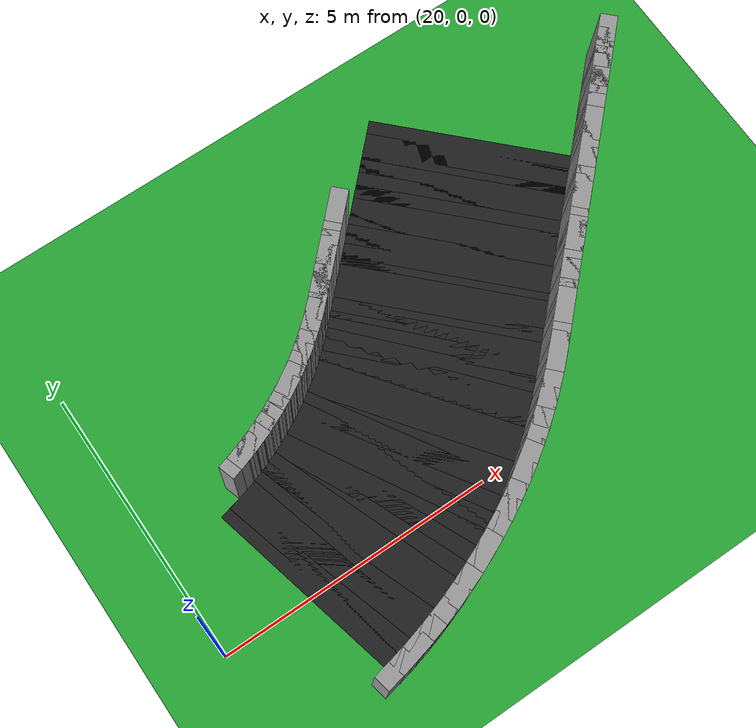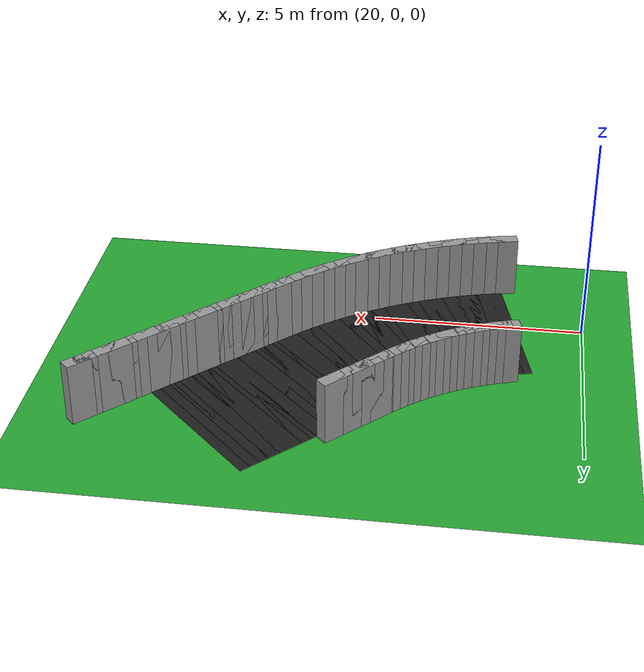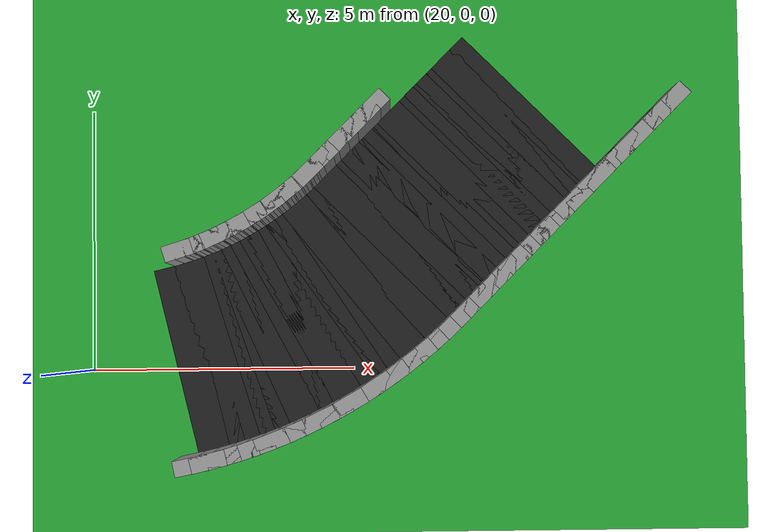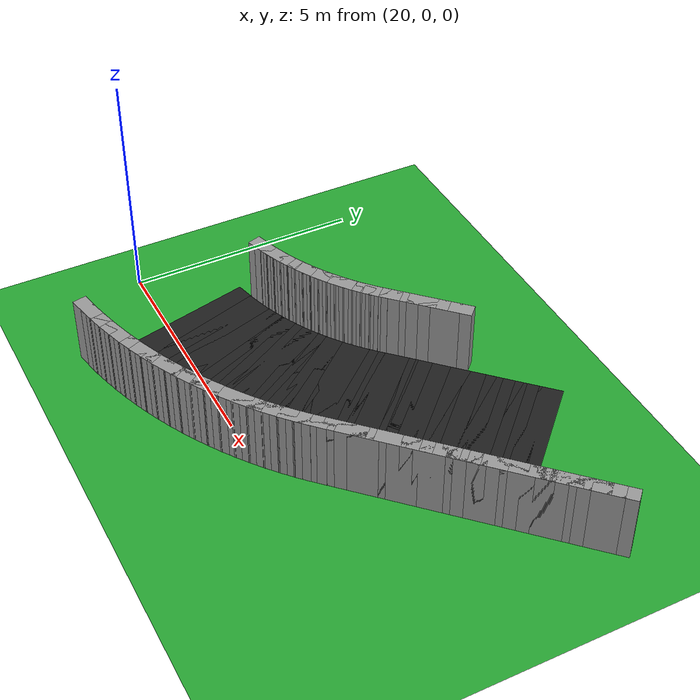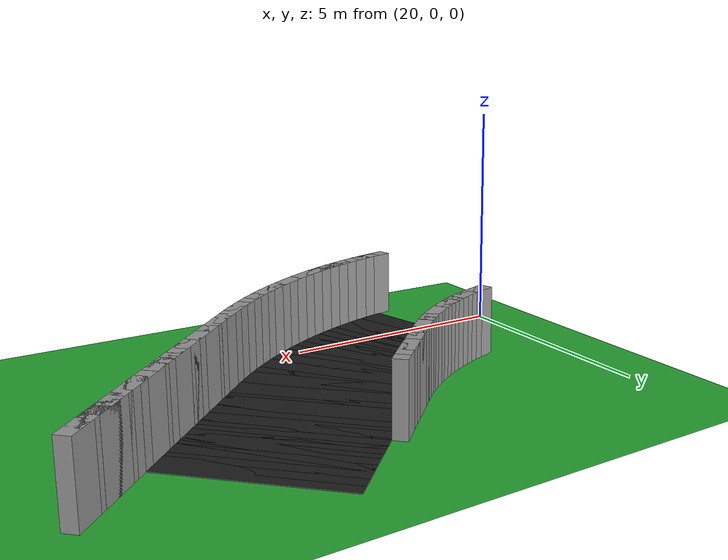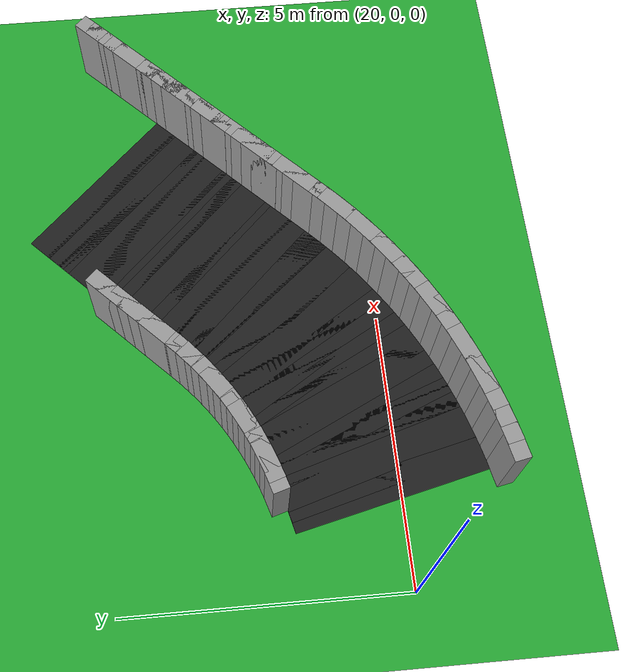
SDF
<sdf version="1.6">
 <world name="obstacle_tight">
  <include><uri>model://sun</uri></include>
  <model name="ground_plane">
   <static>true</static>
   <link name="link">
    <collision name="collision">
     <surface><friction><ode><mu>100</mu><mu2>50</mu2></ode></friction></surface>
     <geometry><plane><normal>0 0 1</normal><size>120 120</size></plane></geometry>
    </collision>
    <visual name="visual">
     <geometry><plane><normal>0 0 1</normal><size>120 120</size></plane></geometry>
     <material>
      <script><uri>file://media/materials/scripts/gazebo.material</uri><name>Gazebo/Green</name></script>
     </material>
    </visual>
   </link>
  </model>
  <model name="curbR_86">
   <static>true</static>
   <pose>22.018 -1.742 0.750 0 0 0.20420</pose>
   <link name="link">
    <collision name="collision"><geometry><box><size>0.673 0.300 1.500</size></box></geometry></collision>
    <visual name="visual">
     <geometry><box><size>0.673 0.300 1.500</size></box></geometry>
     <material>
      <script><uri>file://media/materials/scripts/gazebo.material</uri><name>Gazebo/Grey</name></script>
     </material>
    </visual>
   </link>
  </model>
  <model name="asphalt_87">
   <static>true</static>
   <pose>21.867 0.222 0.005 0 0 0.23562</pose>
   <link name="link">
    <visual name="visual">
     <geometry><box><size>0.611 3.600 0.010</size></box></geometry>
     <material>
      <script><uri>file://media/materials/scripts/gazebo.material</uri><name>Gazebo/Black</name></script>
     </material>
    </visual>
   </link>
  </model>
  <model name="curbR_87">
   <static>true</static>
   <pose>22.323 -1.674 0.750 0 0 0.23562</pose>
   <link name="link">
    <collision name="collision"><geometry><box><size>0.673 0.300 1.500</size></box></geometry></collision>
    <visual name="visual">
     <geometry><box><size>0.673 0.300 1.500</size></box></geometry>
     <material>
      <script><uri>file://media/materials/scripts/gazebo.material</uri><name>Gazebo/Grey</name></script>
     </material>
    </visual>
   </link>
  </model>
  <model name="asphalt_88">
   <static>true</static>
   <pose>22.111 0.285 0.005 0 0 0.26704</pose>
   <link name="link">
    <visual name="visual">
     <geometry><box><size>0.611 3.600 0.010</size></box></geometry>
     <material>
      <script><uri>file://media/materials/scripts/gazebo.material</uri><name>Gazebo/Black</name></script>
     </material>
    </visual>
   </link>
  </model>
  <model name="curbR_88">
   <static>true</static>
   <pose>22.625 -1.596 0.750 0 0 0.26704</pose>
   <link name="link">
    <collision name="collision"><geometry><box><size>0.673 0.300 1.500</size></box></geometry></collision>
    <visual name="visual">
     <geometry><box><size>0.673 0.300 1.500</size></box></geometry>
     <material>
      <script><uri>file://media/materials/scripts/gazebo.material</uri><name>Gazebo/Grey</name></script>
     </material>
    </visual>
   </link>
  </model>
  <model name="asphalt_89">
   <static>true</static>
   <pose>22.352 0.355 0.005 0 0 0.29845</pose>
   <link name="link">
    <visual name="visual">
     <geometry><box><size>0.611 3.600 0.010</size></box></geometry>
     <material>
      <script><uri>file://media/materials/scripts/gazebo.material</uri><name>Gazebo/Black</name></script>
     </material>
    </visual>
   </link>
  </model>
  <model name="curbL_89">
   <static>true</static>
   <pose>21.779 2.218 0.750 0 0 0.29845</pose>
   <link name="link">
    <collision name="collision"><geometry><box><size>0.550 0.300 1.500</size></box></geometry></collision>
    <visual name="visual">
     <geometry><box><size>0.550 0.300 1.500</size></box></geometry>
     <material>
      <script><uri>file://media/materials/scripts/gazebo.material</uri><name>Gazebo/Grey</name></script>
     </material>
    </visual>
   </link>
  </model>
  <model name="curbR_89">
   <static>true</static>
   <pose>22.925 -1.509 0.750 0 0 0.29845</pose>
   <link name="link">
    <collision name="collision"><geometry><box><size>0.673 0.300 1.500</size></box></geometry></collision>
    <visual name="visual">
     <geometry><box><size>0.673 0.300 1.500</size></box></geometry>
     <material>
      <script><uri>file://media/materials/scripts/gazebo.material</uri><name>Gazebo/Grey</name></script>
     </material>
    </visual>
   </link>
  </model>
  <model name="asphalt_90">
   <static>true</static>
   <pose>22.591 0.432 0.005 0 0 0.32987</pose>
   <link name="link">
    <visual name="visual">
     <geometry><box><size>0.611 3.600 0.010</size></box></geometry>
     <material>
      <script><uri>file://media/materials/scripts/gazebo.material</uri><name>Gazebo/Black</name></script>
     </material>
    </visual>
   </link>
  </model>
  <model name="curbL_90">
   <static>true</static>
   <pose>21.960 2.277 0.750 0 0 0.32987</pose>
   <link name="link">
    <collision name="collision"><geometry><box><size>0.550 0.300 1.500</size></box></geometry></collision>
    <visual name="visual">
     <geometry><box><size>0.550 0.300 1.500</size></box></geometry>
     <material>
      <script><uri>file://media/materials/scripts/gazebo.material</uri><name>Gazebo/Grey</name></script>
     </material>
    </visual>
   </link>
  </model>
  <model name="curbR_90">
   <static>true</static>
   <pose>23.223 -1.412 0.750 0 0 0.32987</pose>
   <link name="link">
    <collision name="collision"><geometry><box><size>0.673 0.300 1.500</size></box></geometry></collision>
    <visual name="visual">
     <geometry><box><size>0.673 0.300 1.500</size></box></geometry>
     <material>
      <script><uri>file://media/materials/scripts/gazebo.material</uri><name>Gazebo/Grey</name></script>
     </material>
    </visual>
   </link>
  </model>
  <model name="asphalt_91">
   <static>true</static>
   <pose>22.828 0.517 0.005 0 0 0.36128</pose>
   <link name="link">
    <visual name="visual">
     <geometry><box><size>0.611 3.600 0.010</size></box></geometry>
     <material>
      <script><uri>file://media/materials/scripts/gazebo.material</uri><name>Gazebo/Black</name></script>
     </material>
    </visual>
   </link>
  </model>
  <model name="curbL_91">
   <static>true</static>
   <pose>22.138 2.341 0.750 0 0 0.36128</pose>
   <link name="link">
    <collision name="collision"><geometry><box><size>0.550 0.300 1.500</size></box></geometry></collision>
    <visual name="visual">
     <geometry><box><size>0.550 0.300 1.500</size></box></geometry>
     <material>
      <script><uri>file://media/materials/scripts/gazebo.material</uri><name>Gazebo/Grey</name></script>
     </material>
    </visual>
   </link>
  </model>
  <model name="curbR_91">
   <static>true</static>
   <pose>23.517 -1.306 0.750 0 0 0.36128</pose>
   <link name="link">
    <collision name="collision"><geometry><box><size>0.673 0.300 1.500</size></box></geometry></collision>
    <visual name="visual">
     <geometry><box><size>0.673 0.300 1.500</size></box></geometry>
     <material>
      <script><uri>file://media/materials/scripts/gazebo.material</uri><name>Gazebo/Grey</name></script>
     </material>
    </visual>
   </link>
  </model>
  <model name="asphalt_92">
   <static>true</static>
   <pose>23.061 0.610 0.005 0 0 0.39270</pose>
   <link name="link">
    <visual name="visual">
     <geometry><box><size>0.611 3.600 0.010</size></box></geometry>
     <material>
      <script><uri>file://media/materials/scripts/gazebo.material</uri><name>Gazebo/Black</name></script>
     </material>
    </visual>
   </link>
  </model>
  <model name="curbL_92">
   <static>true</static>
   <pose>22.315 2.411 0.750 0 0 0.39270</pose>
   <link name="link">
    <collision name="collision"><geometry><box><size>0.550 0.300 1.500</size></box></geometry></collision>
    <visual name="visual">
     <geometry><box><size>0.550 0.300 1.500</size></box></geometry>
     <material>
      <script><uri>file://media/materials/scripts/gazebo.material</uri><name>Gazebo/Grey</name></script>
     </material>
    </visual>
   </link>
  </model>
  <model name="curbR_92">
   <static>true</static>
   <pose>23.807 -1.191 0.750 0 0 0.39270</pose>
   <link name="link">
    <collision name="collision"><geometry><box><size>0.673 0.300 1.500</size></box></geometry></collision>
    <visual name="visual">
     <geometry><box><size>0.673 0.300 1.500</size></box></geometry>
     <material>
      <script><uri>file://media/materials/scripts/gazebo.material</uri><name>Gazebo/Grey</name></script>
     </material>
    </visual>
   </link>
  </model>
  <model name="asphalt_93">
   <static>true</static>
   <pose>23.292 0.710 0.005 0 0 0.42412</pose>
   <link name="link">
    <visual name="visual">
     <geometry><box><size>0.611 3.600 0.010</size></box></geometry>
     <material>
      <script><uri>file://media/materials/scripts/gazebo.material</uri><name>Gazebo/Black</name></script>
     </material>
    </visual>
   </link>
  </model>
  <model name="curbL_93">
   <static>true</static>
   <pose>22.489 2.487 0.750 0 0 0.42412</pose>
   <link name="link">
    <collision name="collision"><geometry><box><size>0.550 0.300 1.500</size></box></geometry></collision>
    <visual name="visual">
     <geometry><box><size>0.550 0.300 1.500</size></box></geometry>
     <material>
      <script><uri>file://media/materials/scripts/gazebo.material</uri><name>Gazebo/Grey</name></script>
     </material>
    </visual>
   </link>
  </model>
  <model name="curbR_93">
   <static>true</static>
   <pose>24.094 -1.067 0.750 0 0 0.42412</pose>
   <link name="link">
    <collision name="collision"><geometry><box><size>0.673 0.300 1.500</size></box></geometry></collision>
    <visual name="visual">
     <geometry><box><size>0.673 0.300 1.500</size></box></geometry>
     <material>
      <script><uri>file://media/materials/scripts/gazebo.material</uri><name>Gazebo/Grey</name></script>
     </material>
    </visual>
   </link>
  </model>
  <model name="asphalt_94">
   <static>true</static>
   <pose>23.519 0.817 0.005 0 0 0.45553</pose>
   <link name="link">
    <visual name="visual">
     <geometry><box><size>0.611 3.600 0.010</size></box></geometry>
     <material>
      <script><uri>file://media/materials/scripts/gazebo.material</uri><name>Gazebo/Black</name></script>
     </material>
    </visual>
   </link>
  </model>
  <model name="curbL_94">
   <static>true</static>
   <pose>22.661 2.568 0.750 0 0 0.45553</pose>
   <link name="link">
    <collision name="collision"><geometry><box><size>0.550 0.300 1.500</size></box></geometry></collision>
    <visual name="visual">
     <geometry><box><size>0.550 0.300 1.500</size></box></geometry>
     <material>
      <script><uri>file://media/materials/scripts/gazebo.material</uri><name>Gazebo/Grey</name></script>
     </material>
    </visual>
   </link>
  </model>
  <model name="curbR_94">
   <static>true</static>
   <pose>24.377 -0.934 0.750 0 0 0.45553</pose>
   <link name="link">
    <collision name="collision"><geometry><box><size>0.673 0.300 1.500</size></box></geometry></collision>
    <visual name="visual">
     <geometry><box><size>0.673 0.300 1.500</size></box></geometry>
     <material>
      <script><uri>file://media/materials/scripts/gazebo.material</uri><name>Gazebo/Grey</name></script>
     </material>
    </visual>
   </link>
  </model>
  <model name="asphalt_95">
   <static>true</static>
   <pose>23.743 0.931 0.005 0 0 0.48695</pose>
   <link name="link">
    <visual name="visual">
     <geometry><box><size>0.611 3.600 0.010</size></box></geometry>
     <material>
      <script><uri>file://media/materials/scripts/gazebo.material</uri><name>Gazebo/Black</name></script>
     </material>
    </visual>
   </link>
  </model>
  <model name="curbL_95">
   <static>true</static>
   <pose>22.831 2.654 0.750 0 0 0.48695</pose>
   <link name="link">
    <collision name="collision"><geometry><box><size>0.550 0.300 1.500</size></box></geometry></collision>
    <visual name="visual">
     <geometry><box><size>0.550 0.300 1.500</size></box></geometry>
     <material>
      <script><uri>file://media/materials/scripts/gazebo.material</uri><name>Gazebo/Grey</name></script>
     </material>
    </visual>
   </link>
  </model>
  <model name="curbR_95">
   <static>true</static>
   <pose>24.655 -0.792 0.750 0 0 0.48695</pose>
   <link name="link">
    <collision name="collision"><geometry><box><size>0.673 0.300 1.500</size></box></geometry></collision>
    <visual name="visual">
     <geometry><box><size>0.673 0.300 1.500</size></box></geometry>
     <material>
      <script><uri>file://media/materials/scripts/gazebo.material</uri><name>Gazebo/Grey</name></script>
     </material>
    </visual>
   </link>
  </model>
  <model name="asphalt_96">
   <static>true</static>
   <pose>23.963 1.052 0.005 0 0 0.51836</pose>
   <link name="link">
    <visual name="visual">
     <geometry><box><size>0.611 3.600 0.010</size></box></geometry>
     <material>
      <script><uri>file://media/materials/scripts/gazebo.material</uri><name>Gazebo/Black</name></script>
     </material>
    </visual>
   </link>
  </model>
  <model name="curbL_96">
   <static>true</static>
   <pose>22.997 2.745 0.750 0 0 0.51836</pose>
   <link name="link">
    <collision name="collision"><geometry><box><size>0.550 0.300 1.500</size></box></geometry></collision>
    <visual name="visual">
     <geometry><box><size>0.550 0.300 1.500</size></box></geometry>
     <material>
      <script><uri>file://media/materials/scripts/gazebo.material</uri><name>Gazebo/Grey</name></script>
     </material>
    </visual>
   </link>
  </model>
  <model name="curbR_96">
   <static>true</static>
   <pose>24.929 -0.642 0.750 0 0 0.51836</pose>
   <link name="link">
    <collision name="collision"><geometry><box><size>0.673 0.300 1.500</size></box></geometry></collision>
    <visual name="visual">
     <geometry><box><size>0.673 0.300 1.500</size></box></geometry>
     <material>
      <script><uri>file://media/materials/scripts/gazebo.material</uri><name>Gazebo/Grey</name></script>
     </material>
    </visual>
   </link>
  </model>
  <model name="asphalt_97">
   <static>true</static>
   <pose>24.180 1.180 0.005 0 0 0.54978</pose>
   <link name="link">
    <visual name="visual">
     <geometry><box><size>0.611 3.600 0.010</size></box></geometry>
     <material>
      <script><uri>file://media/materials/scripts/gazebo.material</uri><name>Gazebo/Black</name></script>
     </material>
    </visual>
   </link>
  </model>
  <model name="curbL_97">
   <static>true</static>
   <pose>23.161 2.842 0.750 0 0 0.54978</pose>
   <link name="link">
    <collision name="collision"><geometry><box><size>0.550 0.300 1.500</size></box></geometry></collision>
    <visual name="visual">
     <geometry><box><size>0.550 0.300 1.500</size></box></geometry>
     <material>
      <script><uri>file://media/materials/scripts/gazebo.material</uri><name>Gazebo/Grey</name></script>
     </material>
    </visual>
   </link>
  </model>
  <model name="curbR_97">
   <static>true</static>
   <pose>25.198 -0.483 0.750 0 0 0.54978</pose>
   <link name="link">
    <collision name="collision"><geometry><box><size>0.673 0.300 1.500</size></box></geometry></collision>
    <visual name="visual">
     <geometry><box><size>0.673 0.300 1.500</size></box></geometry>
     <material>
      <script><uri>file://media/materials/scripts/gazebo.material</uri><name>Gazebo/Grey</name></script>
     </material>
    </visual>
   </link>
  </model>
  <model name="asphalt_98">
   <static>true</static>
   <pose>24.392 1.314 0.005 0 0 0.58119</pose>
   <link name="link">
    <visual name="visual">
     <geometry><box><size>0.611 3.600 0.010</size></box></geometry>
     <material>
      <script><uri>file://media/materials/scripts/gazebo.material</uri><name>Gazebo/Black</name></script>
     </material>
    </visual>
   </link>
  </model>
  <model name="curbL_98">
   <static>true</static>
   <pose>23.321 2.944 0.750 0 0 0.58119</pose>
   <link name="link">
    <collision name="collision"><geometry><box><size>0.550 0.300 1.500</size></box></geometry></collision>
    <visual name="visual">
     <geometry><box><size>0.550 0.300 1.500</size></box></geometry>
     <material>
      <script><uri>file://media/materials/scripts/gazebo.material</uri><name>Gazebo/Grey</name></script>
     </material>
    </visual>
   </link>
  </model>
  <model name="curbR_98">
   <static>true</static>
   <pose>25.462 -0.315 0.750 0 0 0.58119</pose>
   <link name="link">
    <collision name="collision"><geometry><box><size>0.673 0.300 1.500</size></box></geometry></collision>
    <visual name="visual">
     <geometry><box><size>0.673 0.300 1.500</size></box></geometry>
     <material>
      <script><uri>file://media/materials/scripts/gazebo.material</uri><name>Gazebo/Grey</name></script>
     </material>
    </visual>
   </link>
  </model>
  <model name="asphalt_99">
   <static>true</static>
   <pose>24.600 1.456 0.005 0 0 0.61261</pose>
   <link name="link">
    <visual name="visual">
     <geometry><box><size>0.611 3.600 0.010</size></box></geometry>
     <material>
      <script><uri>file://media/materials/scripts/gazebo.material</uri><name>Gazebo/Black</name></script>
     </material>
    </visual>
   </link>
  </model>
  <model name="curbL_99">
   <static>true</static>
   <pose>23.479 3.051 0.750 0 0 0.61261</pose>
   <link name="link">
    <collision name="collision"><geometry><box><size>0.550 0.300 1.500</size></box></geometry></collision>
    <visual name="visual">
     <geometry><box><size>0.550 0.300 1.500</size></box></geometry>
     <material>
      <script><uri>file://media/materials/scripts/gazebo.material</uri><name>Gazebo/Grey</name></script>
     </material>
    </visual>
   </link>
  </model>
  <model name="curbR_99">
   <static>true</static>
   <pose>25.721 -0.140 0.750 0 0 0.61261</pose>
   <link name="link">
    <collision name="collision"><geometry><box><size>0.673 0.300 1.500</size></box></geometry></collision>
    <visual name="visual">
     <geometry><box><size>0.673 0.300 1.500</size></box></geometry>
     <material>
      <script><uri>file://media/materials/scripts/gazebo.material</uri><name>Gazebo/Grey</name></script>
     </material>
    </visual>
   </link>
  </model>
  <model name="asphalt_100">
   <static>true</static>
   <pose>24.803 1.603 0.005 0 0 0.64403</pose>
   <link name="link">
    <visual name="visual">
     <geometry><box><size>0.611 3.600 0.010</size></box></geometry>
     <material>
      <script><uri>file://media/materials/scripts/gazebo.material</uri><name>Gazebo/Black</name></script>
     </material>
    </visual>
   </link>
  </model>
  <model name="curbL_100">
   <static>true</static>
   <pose>23.632 3.163 0.750 0 0 0.64403</pose>
   <link name="link">
    <collision name="collision"><geometry><box><size>0.550 0.300 1.500</size></box></geometry></collision>
    <visual name="visual">
     <geometry><box><size>0.550 0.300 1.500</size></box></geometry>
     <material>
      <script><uri>file://media/materials/scripts/gazebo.material</uri><name>Gazebo/Grey</name></script>
     </material>
    </visual>
   </link>
  </model>
  <model name="curbR_100">
   <static>true</static>
   <pose>25.974 0.044 0.750 0 0 0.64403</pose>
   <link name="link">
    <collision name="collision"><geometry><box><size>0.673 0.300 1.500</size></box></geometry></collision>
    <visual name="visual">
     <geometry><box><size>0.673 0.300 1.500</size></box></geometry>
     <material>
      <script><uri>file://media/materials/scripts/gazebo.material</uri><name>Gazebo/Grey</name></script>
     </material>
    </visual>
   </link>
  </model>
  <model name="asphalt_101">
   <static>true</static>
   <pose>25.002 1.757 0.005 0 0 0.67544</pose>
   <link name="link">
    <visual name="visual">
     <geometry><box><size>0.611 3.600 0.010</size></box></geometry>
     <material>
      <script><uri>file://media/materials/scripts/gazebo.material</uri><name>Gazebo/Black</name></script>
     </material>
    </visual>
   </link>
  </model>
  <model name="curbL_101">
   <static>true</static>
   <pose>23.782 3.279 0.750 0 0 0.67544</pose>
   <link name="link">
    <collision name="collision"><geometry><box><size>0.550 0.300 1.500</size></box></geometry></collision>
    <visual name="visual">
     <geometry><box><size>0.550 0.300 1.500</size></box></geometry>
     <material>
      <script><uri>file://media/materials/scripts/gazebo.material</uri><name>Gazebo/Grey</name></script>
     </material>
    </visual>
   </link>
  </model>
  <model name="curbR_101">
   <static>true</static>
   <pose>26.221 0.236 0.750 0 0 0.67544</pose>
   <link name="link">
    <collision name="collision"><geometry><box><size>0.673 0.300 1.500</size></box></geometry></collision>
    <visual name="visual">
     <geometry><box><size>0.673 0.300 1.500</size></box></geometry>
     <material>
      <script><uri>file://media/materials/scripts/gazebo.material</uri><name>Gazebo/Grey</name></script>
     </material>
    </visual>
   </link>
  </model>
  <model name="asphalt_102">
   <static>true</static>
   <pose>25.195 1.918 0.005 0 0 0.70686</pose>
   <link name="link">
    <visual name="visual">
     <geometry><box><size>0.611 3.600 0.010</size></box></geometry>
     <material>
      <script><uri>file://media/materials/scripts/gazebo.material</uri><name>Gazebo/Black</name></script>
     </material>
    </visual>
   </link>
  </model>
  <model name="curbL_102">
   <static>true</static>
   <pose>23.929 3.400 0.750 0 0 0.70686</pose>
   <link name="link">
    <collision name="collision"><geometry><box><size>0.550 0.300 1.500</size></box></geometry></collision>
    <visual name="visual">
     <geometry><box><size>0.550 0.300 1.500</size></box></geometry>
     <material>
      <script><uri>file://media/materials/scripts/gazebo.material</uri><name>Gazebo/Grey</name></script>
     </material>
    </visual>
   </link>
  </model>
  <model name="curbR_102">
   <static>true</static>
   <pose>26.461 0.435 0.750 0 0 0.70686</pose>
   <link name="link">
    <collision name="collision"><geometry><box><size>0.673 0.300 1.500</size></box></geometry></collision>
    <visual name="visual">
     <geometry><box><size>0.673 0.300 1.500</size></box></geometry>
     <material>
      <script><uri>file://media/materials/scripts/gazebo.material</uri><name>Gazebo/Grey</name></script>
     </material>
    </visual>
   </link>
  </model>
  <model name="asphalt_103">
   <static>true</static>
   <pose>25.384 2.084 0.005 0 0 0.73827</pose>
   <link name="link">
    <visual name="visual">
     <geometry><box><size>0.611 3.600 0.010</size></box></geometry>
     <material>
      <script><uri>file://media/materials/scripts/gazebo.material</uri><name>Gazebo/Black</name></script>
     </material>
    </visual>
   </link>
  </model>
  <model name="curbL_103">
   <static>true</static>
   <pose>24.071 3.526 0.750 0 0 0.73827</pose>
   <link name="link">
    <collision name="collision"><geometry><box><size>0.550 0.300 1.500</size></box></geometry></collision>
    <visual name="visual">
     <geometry><box><size>0.550 0.300 1.500</size></box></geometry>
     <material>
      <script><uri>file://media/materials/scripts/gazebo.material</uri><name>Gazebo/Grey</name></script>
     </material>
    </visual>
   </link>
  </model>
  <model name="curbR_103">
   <static>true</static>
   <pose>26.696 0.642 0.750 0 0 0.73827</pose>
   <link name="link">
    <collision name="collision"><geometry><box><size>0.673 0.300 1.500</size></box></geometry></collision>
    <visual name="visual">
     <geometry><box><size>0.673 0.300 1.500</size></box></geometry>
     <material>
      <script><uri>file://media/materials/scripts/gazebo.material</uri><name>Gazebo/Grey</name></script>
     </material>
    </visual>
   </link>
  </model>
  <model name="asphalt_104">
   <static>true</static>
   <pose>25.567 2.256 0.005 0 0 0.76969</pose>
   <link name="link">
    <visual name="visual">
     <geometry><box><size>0.611 3.600 0.010</size></box></geometry>
     <material>
      <script><uri>file://media/materials/scripts/gazebo.material</uri><name>Gazebo/Black</name></script>
     </material>
    </visual>
   </link>
  </model>
  <model name="curbL_104">
   <static>true</static>
   <pose>24.210 3.656 0.750 0 0 0.76969</pose>
   <link name="link">
    <collision name="collision"><geometry><box><size>0.550 0.300 1.500</size></box></geometry></collision>
    <visual name="visual">
     <geometry><box><size>0.550 0.300 1.500</size></box></geometry>
     <material>
      <script><uri>file://media/materials/scripts/gazebo.material</uri><name>Gazebo/Grey</name></script>
     </material>
    </visual>
   </link>
  </model>
  <model name="curbR_104">
   <static>true</static>
   <pose>26.924 0.856 0.750 0 0 0.76969</pose>
   <link name="link">
    <collision name="collision"><geometry><box><size>0.673 0.300 1.500</size></box></geometry></collision>
    <visual name="visual">
     <geometry><box><size>0.673 0.300 1.500</size></box></geometry>
     <material>
      <script><uri>file://media/materials/scripts/gazebo.material</uri><name>Gazebo/Grey</name></script>
     </material>
    </visual>
   </link>
  </model>
  <model name="asphalt_105">
   <static>true</static>
   <pose>25.745 2.432 0.005 0 0 0.78540</pose>
   <link name="link">
    <visual name="visual">
     <geometry><box><size>0.610 3.600 0.010</size></box></geometry>
     <material>
      <script><uri>file://media/materials/scripts/gazebo.material</uri><name>Gazebo/Black</name></script>
     </material>
    </visual>
   </link>
  </model>
  <model name="curbL_105">
   <static>true</static>
   <pose>24.367 3.810 0.750 0 0 0.78540</pose>
   <link name="link">
    <collision name="collision"><geometry><box><size>0.610 0.300 1.500</size></box></geometry></collision>
    <visual name="visual">
     <geometry><box><size>0.610 0.300 1.500</size></box></geometry>
     <material>
      <script><uri>file://media/materials/scripts/gazebo.material</uri><name>Gazebo/Grey</name></script>
     </material>
    </visual>
   </link>
  </model>
  <model name="curbR_105">
   <static>true</static>
   <pose>27.124 1.053 0.750 0 0 0.78540</pose>
   <link name="link">
    <collision name="collision"><geometry><box><size>0.610 0.300 1.500</size></box></geometry></collision>
    <visual name="visual">
     <geometry><box><size>0.610 0.300 1.500</size></box></geometry>
     <material>
      <script><uri>file://media/materials/scripts/gazebo.material</uri><name>Gazebo/Grey</name></script>
     </material>
    </visual>
   </link>
  </model>
  <model name="asphalt_106">
   <static>true</static>
   <pose>25.922 2.608 0.005 0 0 0.78540</pose>
   <link name="link">
    <visual name="visual">
     <geometry><box><size>0.610 3.600 0.010</size></box></geometry>
     <material>
      <script><uri>file://media/materials/scripts/gazebo.material</uri><name>Gazebo/Black</name></script>
     </material>
    </visual>
   </link>
  </model>
  <model name="curbL_106">
   <static>true</static>
   <pose>24.543 3.987 0.750 0 0 0.78540</pose>
   <link name="link">
    <collision name="collision"><geometry><box><size>0.610 0.300 1.500</size></box></geometry></collision>
    <visual name="visual">
     <geometry><box><size>0.610 0.300 1.500</size></box></geometry>
     <material>
      <script><uri>file://media/materials/scripts/gazebo.material</uri><name>Gazebo/Grey</name></script>
     </material>
    </visual>
   </link>
  </model>
  <model name="curbR_106">
   <static>true</static>
   <pose>27.301 1.230 0.750 0 0 0.78540</pose>
   <link name="link">
    <collision name="collision"><geometry><box><size>0.610 0.300 1.500</size></box></geometry></collision>
    <visual name="visual">
     <geometry><box><size>0.610 0.300 1.500</size></box></geometry>
     <material>
      <script><uri>file://media/materials/scripts/gazebo.material</uri><name>Gazebo/Grey</name></script>
     </material>
    </visual>
   </link>
  </model>
  <model name="asphalt_107">
   <static>true</static>
   <pose>26.099 2.785 0.005 0 0 0.78540</pose>
   <link name="link">
    <visual name="visual">
     <geometry><box><size>0.610 3.600 0.010</size></box></geometry>
     <material>
      <script><uri>file://media/materials/scripts/gazebo.material</uri><name>Gazebo/Black</name></script>
     </material>
    </visual>
   </link>
  </model>
  <model name="curbL_107">
   <static>true</static>
   <pose>24.720 4.164 0.750 0 0 0.78540</pose>
   <link name="link">
    <collision name="collision"><geometry><box><size>0.610 0.300 1.500</size></box></geometry></collision>
    <visual name="visual">
     <geometry><box><size>0.610 0.300 1.500</size></box></geometry>
     <material>
      <script><uri>file://media/materials/scripts/gazebo.material</uri><name>Gazebo/Grey</name></script>
     </material>
    </visual>
   </link>
  </model>
  <model name="curbR_107">
   <static>true</static>
   <pose>27.478 1.406 0.750 0 0 0.78540</pose>
   <link name="link">
    <collision name="collision"><geometry><box><size>0.610 0.300 1.500</size></box></geometry></collision>
    <visual name="visual">
     <geometry><box><size>0.610 0.300 1.500</size></box></geometry>
     <material>
      <script><uri>file://media/materials/scripts/gazebo.material</uri><name>Gazebo/Grey</name></script>
     </material>
    </visual>
   </link>
  </model>
  <model name="asphalt_108">
   <static>true</static>
   <pose>26.276 2.962 0.005 0 0 0.78540</pose>
   <link name="link">
    <visual name="visual">
     <geometry><box><size>0.610 3.600 0.010</size></box></geometry>
     <material>
      <script><uri>file://media/materials/scripts/gazebo.material</uri><name>Gazebo/Black</name></script>
     </material>
    </visual>
   </link>
  </model>
  <model name="curbL_108">
   <static>true</static>
   <pose>24.897 4.341 0.750 0 0 0.78540</pose>
   <link name="link">
    <collision name="collision"><geometry><box><size>0.610 0.300 1.500</size></box></geometry></collision>
    <visual name="visual">
     <geometry><box><size>0.610 0.300 1.500</size></box></geometry>
     <material>
      <script><uri>file://media/materials/scripts/gazebo.material</uri><name>Gazebo/Grey</name></script>
     </material>
    </visual>
   </link>
  </model>
  <model name="curbR_108">
   <static>true</static>
   <pose>27.655 1.583 0.750 0 0 0.78540</pose>
   <link name="link">
    <collision name="collision"><geometry><box><size>0.610 0.300 1.500</size></box></geometry></collision>
    <visual name="visual">
     <geometry><box><size>0.610 0.300 1.500</size></box></geometry>
     <material>
      <script><uri>file://media/materials/scripts/gazebo.material</uri><name>Gazebo/Grey</name></script>
     </material>
    </visual>
   </link>
  </model>
  <model name="asphalt_109">
   <static>true</static>
   <pose>26.453 3.139 0.005 0 0 0.78540</pose>
   <link name="link">
    <visual name="visual">
     <geometry><box><size>0.610 3.600 0.010</size></box></geometry>
     <material>
      <script><uri>file://media/materials/scripts/gazebo.material</uri><name>Gazebo/Black</name></script>
     </material>
    </visual>
   </link>
  </model>
  <model name="curbL_109">
   <static>true</static>
   <pose>25.074 4.518 0.750 0 0 0.78540</pose>
   <link name="link">
    <collision name="collision"><geometry><box><size>0.610 0.300 1.500</size></box></geometry></collision>
    <visual name="visual">
     <geometry><box><size>0.610 0.300 1.500</size></box></geometry>
     <material>
      <script><uri>file://media/materials/scripts/gazebo.material</uri><name>Gazebo/Grey</name></script>
     </material>
    </visual>
   </link>
  </model>
  <model name="curbR_109">
   <static>true</static>
   <pose>27.831 1.760 0.750 0 0 0.78540</pose>
   <link name="link">
    <collision name="collision"><geometry><box><size>0.610 0.300 1.500</size></box></geometry></collision>
    <visual name="visual">
     <geometry><box><size>0.610 0.300 1.500</size></box></geometry>
     <material>
      <script><uri>file://media/materials/scripts/gazebo.material</uri><name>Gazebo/Grey</name></script>
     </material>
    </visual>
   </link>
  </model>
  <model name="asphalt_110">
   <static>true</static>
   <pose>26.629 3.316 0.005 0 0 0.78540</pose>
   <link name="link">
    <visual name="visual">
     <geometry><box><size>0.610 3.600 0.010</size></box></geometry>
     <material>
      <script><uri>file://media/materials/scripts/gazebo.material</uri><name>Gazebo/Black</name></script>
     </material>
    </visual>
   </link>
  </model>
  <model name="curbL_110">
   <static>true</static>
   <pose>25.251 4.694 0.750 0 0 0.78540</pose>
   <link name="link">
    <collision name="collision"><geometry><box><size>0.610 0.300 1.500</size></box></geometry></collision>
    <visual name="visual">
     <geometry><box><size>0.610 0.300 1.500</size></box></geometry>
     <material>
      <script><uri>file://media/materials/scripts/gazebo.material</uri><name>Gazebo/Grey</name></script>
     </material>
    </visual>
   </link>
  </model>
  <model name="curbR_110">
   <static>true</static>
   <pose>28.008 1.937 0.750 0 0 0.78540</pose>
   <link name="link">
    <collision name="collision"><geometry><box><size>0.610 0.300 1.500</size></box></geometry></collision>
    <visual name="visual">
     <geometry><box><size>0.610 0.300 1.500</size></box></geometry>
     <material>
      <script><uri>file://media/materials/scripts/gazebo.material</uri><name>Gazebo/Grey</name></script>
     </material>
    </visual>
   </link>
  </model>
  <model name="asphalt_111">
   <static>true</static>
   <pose>26.806 3.492 0.005 0 0 0.78540</pose>
   <link name="link">
    <visual name="visual">
     <geometry><box><size>0.610 3.600 0.010</size></box></geometry>
     <material>
      <script><uri>file://media/materials/scripts/gazebo.material</uri><name>Gazebo/Black</name></script>
     </material>
    </visual>
   </link>
  </model>
  <model name="curbL_111">
   <static>true</static>
   <pose>25.427 4.871 0.750 0 0 0.78540</pose>
   <link name="link">
    <collision name="collision"><geometry><box><size>0.610 0.300 1.500</size></box></geometry></collision>
    <visual name="visual">
     <geometry><box><size>0.610 0.300 1.500</size></box></geometry>
     <material>
      <script><uri>file://media/materials/scripts/gazebo.material</uri><name>Gazebo/Grey</name></script>
     </material>
    </visual>
   </link>
  </model>
  <model name="curbR_111">
   <static>true</static>
   <pose>28.185 2.113 0.750 0 0 0.78540</pose>
   <link name="link">
    <collision name="collision"><geometry><box><size>0.610 0.300 1.500</size></box></geometry></collision>
    <visual name="visual">
     <geometry><box><size>0.610 0.300 1.500</size></box></geometry>
     <material>
      <script><uri>file://media/materials/scripts/gazebo.material</uri><name>Gazebo/Grey</name></script>
     </material>
    </visual>
   </link>
  </model>
  <model name="asphalt_112">
   <static>true</static>
   <pose>26.983 3.669 0.005 0 0 0.78540</pose>
   <link name="link">
    <visual name="visual">
     <geometry><box><size>0.610 3.600 0.010</size></box></geometry>
     <material>
      <script><uri>file://media/materials/scripts/gazebo.material</uri><name>Gazebo/Black</name></script>
     </material>
    </visual>
   </link>
  </model>
  <model name="curbR_112">
   <static>true</static>
   <pose>28.362 2.290 0.750 0 0 0.78540</pose>
   <link name="link">
    <collision name="collision"><geometry><box><size>0.610 0.300 1.500</size></box></geometry></collision>
    <visual name="visual">
     <geometry><box><size>0.610 0.300 1.500</size></box></geometry>
     <material>
      <script><uri>file://media/materials/scripts/gazebo.material</uri><name>Gazebo/Grey</name></script>
     </material>
    </visual>
   </link>
  </model>
  <model name="asphalt_113">
   <static>true</static>
   <pose>27.160 3.846 0.005 0 0 0.78540</pose>
   <link name="link">
    <visual name="visual">
     <geometry><box><size>0.610 3.600 0.010</size></box></geometry>
     <material>
      <script><uri>file://media/materials/scripts/gazebo.material</uri><name>Gazebo/Black</name></script>
     </material>
    </visual>
   </link>
  </model>
  <model name="curbR_113">
   <static>true</static>
   <pose>28.539 2.467 0.750 0 0 0.78540</pose>
   <link name="link">
    <collision name="collision"><geometry><box><size>0.610 0.300 1.500</size></box></geometry></collision>
    <visual name="visual">
     <geometry><box><size>0.610 0.300 1.500</size></box></geometry>
     <material>
      <script><uri>file://media/materials/scripts/gazebo.material</uri><name>Gazebo/Grey</name></script>
     </material>
    </visual>
   </link>
  </model>
  <model name="asphalt_114">
   <static>true</static>
   <pose>27.336 4.023 0.005 0 0 0.78540</pose>
   <link name="link">
    <visual name="visual">
     <geometry><box><size>0.610 3.600 0.010</size></box></geometry>
     <material>
      <script><uri>file://media/materials/scripts/gazebo.material</uri><name>Gazebo/Black</name></script>
     </material>
    </visual>
   </link>
  </model>
  <model name="curbR_114">
   <static>true</static>
   <pose>28.715 2.644 0.750 0 0 0.78540</pose>
   <link name="link">
    <collision name="collision"><geometry><box><size>0.610 0.300 1.500</size></box></geometry></collision>
    <visual name="visual">
     <geometry><box><size>0.610 0.300 1.500</size></box></geometry>
     <material>
      <script><uri>file://media/materials/scripts/gazebo.material</uri><name>Gazebo/Grey</name></script>
     </material>
    </visual>
   </link>
  </model>
  <model name="asphalt_115">
   <static>true</static>
   <pose>27.513 4.199 0.005 0 0 0.78540</pose>
   <link name="link">
    <visual name="visual">
     <geometry><box><size>0.610 3.600 0.010</size></box></geometry>
     <material>
      <script><uri>file://media/materials/scripts/gazebo.material</uri><name>Gazebo/Black</name></script>
     </material>
    </visual>
   </link>
  </model>
  <model name="curbR_115">
   <static>true</static>
   <pose>28.892 2.821 0.750 0 0 0.78540</pose>
   <link name="link">
    <collision name="collision"><geometry><box><size>0.610 0.300 1.500</size></box></geometry></collision>
    <visual name="visual">
     <geometry><box><size>0.610 0.300 1.500</size></box></geometry>
     <material>
      <script><uri>file://media/materials/scripts/gazebo.material</uri><name>Gazebo/Grey</name></script>
     </material>
    </visual>
   </link>
  </model>
  <model name="asphalt_116">
   <static>true</static>
   <pose>27.690 4.376 0.005 0 0 0.78540</pose>
   <link name="link">
    <visual name="visual">
     <geometry><box><size>0.610 3.600 0.010</size></box></geometry>
     <material>
      <script><uri>file://media/materials/scripts/gazebo.material</uri><name>Gazebo/Black</name></script>
     </material>
    </visual>
   </link>
  </model>
  <model name="curbR_116">
   <static>true</static>
   <pose>29.069 2.997 0.750 0 0 0.78540</pose>
   <link name="link">
    <collision name="collision"><geometry><box><size>0.610 0.300 1.500</size></box></geometry></collision>
    <visual name="visual">
     <geometry><box><size>0.610 0.300 1.500</size></box></geometry>
     <material>
      <script><uri>file://media/materials/scripts/gazebo.material</uri><name>Gazebo/Grey</name></script>
     </material>
    </visual>
   </link>
  </model>
  <model name="asphalt_117">
   <static>true</static>
   <pose>27.867 4.553 0.005 0 0 0.78540</pose>
   <link name="link">
    <visual name="visual">
     <geometry><box><size>0.610 3.600 0.010</size></box></geometry>
     <material>
      <script><uri>file://media/materials/scripts/gazebo.material</uri><name>Gazebo/Black</name></script>
     </material>
    </visual>
   </link>
  </model>
  <model name="curbR_117">
   <static>true</static>
   <pose>29.246 3.174 0.750 0 0 0.78540</pose>
   <link name="link">
    <collision name="collision"><geometry><box><size>0.610 0.300 1.500</size></box></geometry></collision>
    <visual name="visual">
     <geometry><box><size>0.610 0.300 1.500</size></box></geometry>
     <material>
      <script><uri>file://media/materials/scripts/gazebo.material</uri><name>Gazebo/Grey</name></script>
     </material>
    </visual>
   </link>
  </model>
  <model name="asphalt_118">
   <static>true</static>
   <pose>28.044 4.730 0.005 0 0 0.78540</pose>
   <link name="link">
    <visual name="visual">
     <geometry><box><size>0.610 3.600 0.010</size></box></geometry>
     <material>
      <script><uri>file://media/materials/scripts/gazebo.material</uri><name>Gazebo/Black</name></script>
     </material>
    </visual>
   </link>
  </model>
  <model name="curbR_118">
   <static>true</static>
   <pose>29.422 3.351 0.750 0 0 0.78540</pose>
   <link name="link">
    <collision name="collision"><geometry><box><size>0.610 0.300 1.500</size></box></geometry></collision>
    <visual name="visual">
     <geometry><box><size>0.610 0.300 1.500</size></box></geometry>
     <material>
      <script><uri>file://media/materials/scripts/gazebo.material</uri><name>Gazebo/Grey</name></script>
     </material>
    </visual>
   </link>
  </model>
  <model name="asphalt_119">
   <static>true</static>
   <pose>28.220 4.907 0.005 0 0 0.78540</pose>
   <link name="link">
    <visual name="visual">
     <geometry><box><size>0.610 3.600 0.010</size></box></geometry>
     <material>
      <script><uri>file://media/materials/scripts/gazebo.material</uri><name>Gazebo/Black</name></script>
     </material>
    </visual>
   </link>
  </model>
  <model name="curbR_119">
   <static>true</static>
   <pose>29.599 3.528 0.750 0 0 0.78540</pose>
   <link name="link">
    <collision name="collision"><geometry><box><size>0.610 0.300 1.500</size></box></geometry></collision>
    <visual name="visual">
     <geometry><box><size>0.610 0.300 1.500</size></box></geometry>
     <material>
      <script><uri>file://media/materials/scripts/gazebo.material</uri><name>Gazebo/Grey</name></script>
     </material>
    </visual>
   </link>
  </model>
  <model name="curbR_120">
   <static>true</static>
   <pose>29.776 3.704 0.750 0 0 0.78540</pose>
   <link name="link">
    <collision name="collision"><geometry><box><size>0.610 0.300 1.500</size></box></geometry></collision>
    <visual name="visual">
     <geometry><box><size>0.610 0.300 1.500</size></box></geometry>
     <material>
      <script><uri>file://media/materials/scripts/gazebo.material</uri><name>Gazebo/Grey</name></script>
     </material>
    </visual>
   </link>
  </model>
  <model name="curbR_121">
   <static>true</static>
   <pose>29.953 3.881 0.750 0 0 0.78540</pose>
   <link name="link">
    <collision name="collision"><geometry><box><size>0.610 0.300 1.500</size></box></geometry></collision>
    <visual name="visual">
     <geometry><box><size>0.610 0.300 1.500</size></box></geometry>
     <material>
      <script><uri>file://media/materials/scripts/gazebo.material</uri><name>Gazebo/Grey</name></script>
     </material>
    </visual>
   </link>
  </model>
  <model name="curbR_122">
   <static>true</static>
   <pose>30.130 4.058 0.750 0 0 0.78540</pose>
   <link name="link">
    <collision name="collision"><geometry><box><size>0.610 0.300 1.500</size></box></geometry></collision>
    <visual name="visual">
     <geometry><box><size>0.610 0.300 1.500</size></box></geometry>
     <material>
      <script><uri>file://media/materials/scripts/gazebo.material</uri><name>Gazebo/Grey</name></script>
     </material>
    </visual>
   </link>
  </model>
  <model name="curbR_123">
   <static>true</static>
   <pose>30.306 4.235 0.750 0 0 0.78540</pose>
   <link name="link">
    <collision name="collision"><geometry><box><size>0.610 0.300 1.500</size></box></geometry></collision>
    <visual name="visual">
     <geometry><box><size>0.610 0.300 1.500</size></box></geometry>
     <material>
      <script><uri>file://media/materials/scripts/gazebo.material</uri><name>Gazebo/Grey</name></script>
     </material>
    </visual>
   </link>
  </model>
  <model name="curbR_124">
   <static>true</static>
   <pose>30.483 4.412 0.750 0 0 0.78540</pose>
   <link name="link">
    <collision name="collision"><geometry><box><size>0.610 0.300 1.500</size></box></geometry></collision>
    <visual name="visual">
     <geometry><box><size>0.610 0.300 1.500</size></box></geometry>
     <material>
      <script><uri>file://media/materials/scripts/gazebo.material</uri><name>Gazebo/Grey</name></script>
     </material>
    </visual>
   </link>
  </model>
  <model name="curbR_125">
   <static>true</static>
   <pose>30.660 4.588 0.750 0 0 0.78540</pose>
   <link name="link">
    <collision name="collision"><geometry><box><size>0.610 0.300 1.500</size></box></geometry></collision>
    <visual name="visual">
     <geometry><box><size>0.610 0.300 1.500</size></box></geometry>
     <material>
      <script><uri>file://media/materials/scripts/gazebo.material</uri><name>Gazebo/Grey</name></script>
     </material>
    </visual>
   </link>
  </model>
  <model name="curbR_126">
   <static>true</static>
   <pose>30.837 4.765 0.750 0 0 0.78540</pose>
   <link name="link">
    <collision name="collision"><geometry><box><size>0.610 0.300 1.500</size></box></geometry></collision>
    <visual name="visual">
     <geometry><box><size>0.610 0.300 1.500</size></box></geometry>
     <material>
      <script><uri>file://media/materials/scripts/gazebo.material</uri><name>Gazebo/Grey</name></script>
     </material>
    </visual>
   </link>
  </model>
  <model name="curbR_127">
   <static>true</static>
   <pose>31.013 4.942 0.750 0 0 0.78540</pose>
   <link name="link">
    <collision name="collision"><geometry><box><size>0.610 0.300 1.500</size></box></geometry></collision>
    <visual name="visual">
     <geometry><box><size>0.610 0.300 1.500</size></box></geometry>
     <material>
      <script><uri>file://media/materials/scripts/gazebo.material</uri><name>Gazebo/Grey</name></script>
     </material>
    </visual>
   </link>
  </model>
 </world>
</sdf>
